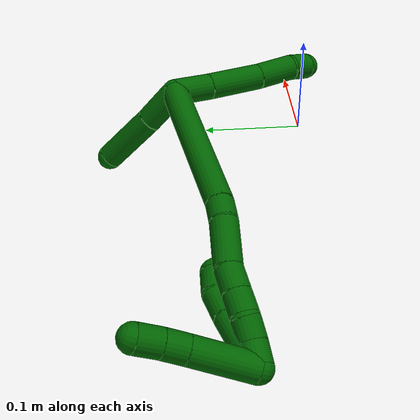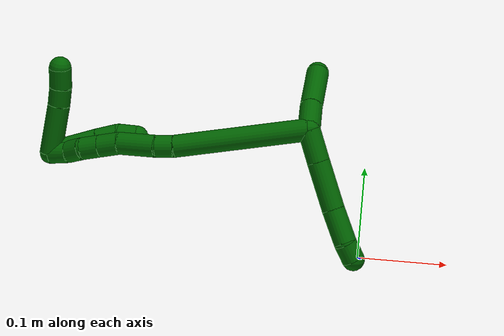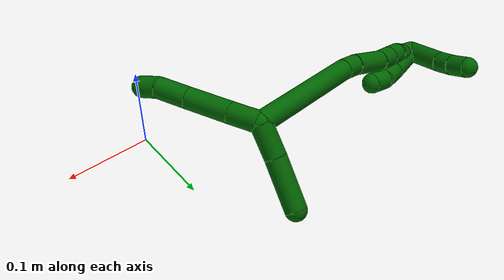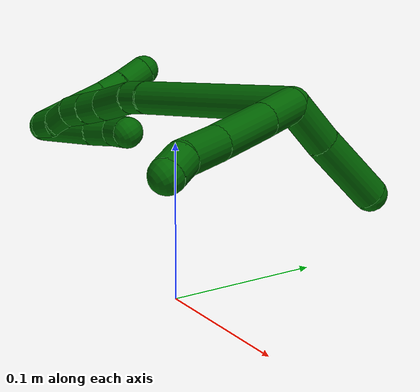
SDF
<sdf version="1.7">
 <world name="default">
  <model name="photoneo_s_sensor">
   <static>1</static>
   <pose>0 0 2 1.57079 1.57079 3.14159</pose>
   <link name="link">
    <inertial><mass>0.1</mass></inertial>
    <sensor name="sensor" type="depth">
     <update_rate>30</update_rate>
     <camera>
      <horizontal_fov>1.22</horizontal_fov>
      <image><width>1920</width><height>1200</height><format>B8G8R8</format></image>
      <clip><near>0.1</near><far>4</far></clip>
      <depth_camera><output>points</output></depth_camera>
     </camera>
     <plugin name="camera_plugin" filename="libgazebo_ros_depth_camera.so">
      <baseline>0.2</baseline>
      <alwaysOn>1</alwaysOn>
      <updateRate>0.0</updateRate>
      <cameraName>camera_ir</cameraName>
      <imageTopicName>/camera/color/image_raw</imageTopicName>
      <cameraInfoTopicName>/camera/color/camera_info</cameraInfoTopicName>
      <depthImageTopicName>/camera/depth/image_raw</depthImageTopicName>
      <depthImageCameraInfoTopicName>/camera/depth/camera_info</depthImageCameraInfoTopicName>
      <pointCloudTopicName>/camera/depth/points</pointCloudTopicName>
      <frameName>fr_optical</frameName>
      <pointCloudCutoff>0.1</pointCloudCutoff>
      <pointCloudCutoffMax>2.0</pointCloudCutoffMax>
      <distortionK1>0</distortionK1>
      <distortionK2>0</distortionK2>
      <distortionK3>0</distortionK3>
      <distortionT1>0</distortionT1>
      <distortionT2>0</distortionT2>
      <CxPrime>0</CxPrime>
      <Cx>0</Cx>
      <Cy>0</Cy>
      <focalLength>0</focalLength>
      <hackBaseline>0</hackBaseline>
     </plugin>
    </sensor>
   </link>
  </model>
  <model name="bin">
   <static>1</static>
   <link name="bottom">
    <collision name="collision-bottom">
     <pose>0 0 -0.01 0 -0 0</pose>
     <geometry><box><size>0.8 0.6 0.02</size></box></geometry>
     <surface>
      <friction><ode><mu>100</mu><mu2>100</mu2></ode></friction>
      <contact><collide_bitmask>65535</collide_bitmask></contact>
     </surface>
    </collision>
   </link>
   <link name="west_wall">
    <collision name="collision-west_wall">
     <pose>-0.41 0 0.1 0 -0 0</pose>
     <geometry><box><size>0.02 0.6 0.2</size></box></geometry>
     <surface>
      <friction><ode><mu>100</mu><mu2>100</mu2></ode></friction>
      <contact><collide_bitmask>65535</collide_bitmask></contact>
     </surface>
    </collision>
   </link>
   <link name="east_wall">
    <collision name="collision-east_wall">
     <pose>0.41 0 0.1 0 -0 0</pose>
     <geometry><box><size>0.02 0.6 0.2</size></box></geometry>
     <surface>
      <friction><ode><mu>100</mu><mu2>100</mu2></ode></friction>
      <contact><collide_bitmask>65535</collide_bitmask></contact>
     </surface>
    </collision>
   </link>
   <link name="south_wall">
    <collision name="collision-south_wall">
     <pose>0 -0.31 0.1 0 -0 0</pose>
     <geometry><box><size>0.8 0.02 0.2</size></box></geometry>
     <surface>
      <friction><ode><mu>100</mu><mu2>100</mu2></ode></friction>
      <contact><collide_bitmask>65535</collide_bitmask></contact>
     </surface>
    </collision>
   </link>
   <link name="north_wall">
    <collision name="collision-north_wall">
     <pose>0 0.31 0.1 0 -0 0</pose>
     <geometry><box><size>0.8 0.02 0.2</size></box></geometry>
     <surface>
      <friction><ode><mu>100</mu><mu2>100</mu2></ode></friction>
      <contact><collide_bitmask>65535</collide_bitmask></contact>
     </surface>
    </collision>
   </link>
  </model>
  <model name="6">
   <static>0</static>
   <link name="6">
    <collision name="collision-cylinder-e_1_2_8">
     <pose>0.008102 -0.00488 -0.015521 2.83697 0.46203 1.98521</pose>
     <geometry><cylinder><radius>0.0125</radius><length>0.036352</length></cylinder></geometry>
     <surface>
      <friction><ode><mu>1.16</mu><mu2>1.16</mu2><slip1>0</slip1><slip2>0</slip2></ode></friction>
      <contact><ode><kp>1e+06</kp><kd>1</kd><max_vel>0</max_vel><min_depth>0.001</min_depth></ode></contact>
     </surface>
    </collision>
    <visual name="visual-cylinder-e_1_2_8">
     <pose>0.008102 -0.00488 -0.015521 2.83697 0.46203 1.98521</pose>
     <geometry><cylinder><radius>0.0125</radius><length>0.036352</length></cylinder></geometry>
     <material><ambient>0 0.392157 0.003922 1</ambient></material>
    </visual>
    <collision name="collision-cylinder-e_2_8_9">
     <pose>0.028754 -0.017737 -0.05378 2.80417 0.480137 1.92575</pose>
     <geometry><cylinder><radius>0.0125</radius><length>0.054337</length></cylinder></geometry>
     <surface>
      <friction><ode><mu>1.16</mu><mu2>1.16</mu2><slip1>0</slip1><slip2>0</slip2></ode></friction>
      <contact><ode><kp>1e+06</kp><kd>1</kd><max_vel>0</max_vel><min_depth>0.001</min_depth></ode></contact>
     </surface>
    </collision>
    <visual name="visual-cylinder-e_2_8_9">
     <pose>0.028754 -0.017737 -0.05378 2.80417 0.480137 1.92575</pose>
     <geometry><cylinder><radius>0.0125</radius><length>0.054337</length></cylinder></geometry>
     <material><ambient>0 0.392157 0.003922 1</ambient></material>
    </visual>
    <collision name="collision-cylinder-e_3_9_10">
     <pose>0.050983 -0.032166 -0.091988 2.74651 0.523737 1.85873</pose>
     <geometry><cylinder><radius>0.0125</radius><length>0.03871</length></cylinder></geometry>
     <surface>
      <friction><ode><mu>1.16</mu><mu2>1.16</mu2><slip1>0</slip1><slip2>0</slip2></ode></friction>
      <contact><ode><kp>1e+06</kp><kd>1</kd><max_vel>0</max_vel><min_depth>0.001</min_depth></ode></contact>
     </surface>
    </collision>
    <visual name="visual-cylinder-e_3_9_10">
     <pose>0.050983 -0.032166 -0.091988 2.74651 0.523737 1.85873</pose>
     <geometry><cylinder><radius>0.0125</radius><length>0.03871</length></cylinder></geometry>
     <material><ambient>0 0.392157 0.003922 1</ambient></material>
    </visual>
    <collision name="collision-cylinder-e_4_10_6">
     <pose>0.066415 -0.039362 -0.115969 3.05426 0.592488 2.85721</pose>
     <geometry><cylinder><radius>0.0125</radius><length>0.020601</length></cylinder></geometry>
     <surface>
      <friction><ode><mu>1.16</mu><mu2>1.16</mu2><slip1>0</slip1><slip2>0</slip2></ode></friction>
      <contact><ode><kp>1e+06</kp><kd>1</kd><max_vel>0</max_vel><min_depth>0.001</min_depth></ode></contact>
     </surface>
    </collision>
    <visual name="visual-cylinder-e_4_10_6">
     <pose>0.066415 -0.039362 -0.115969 3.05426 0.592488 2.85721</pose>
     <geometry><cylinder><radius>0.0125</radius><length>0.020601</length></cylinder></geometry>
     <material><ambient>0 0.392157 0.003922 1</ambient></material>
    </visual>
    <collision name="collision-cylinder-e_1_2_11">
     <pose>-0.001855 0.018913 0.005287 -1.29824 -0.094187 0.071493</pose>
     <geometry><cylinder><radius>0.0125</radius><length>0.039451</length></cylinder></geometry>
     <surface>
      <friction><ode><mu>1.16</mu><mu2>1.16</mu2><slip1>0</slip1><slip2>0</slip2></ode></friction>
      <contact><ode><kp>1e+06</kp><kd>1</kd><max_vel>0</max_vel><min_depth>0.001</min_depth></ode></contact>
     </surface>
    </collision>
    <visual name="visual-cylinder-e_1_2_11">
     <pose>-0.001855 0.018913 0.005287 -1.29824 -0.094187 0.071493</pose>
     <geometry><cylinder><radius>0.0125</radius><length>0.039451</length></cylinder></geometry>
     <material><ambient>0 0.392157 0.003922 1</ambient></material>
    </visual>
    <collision name="collision-cylinder-e_2_11_5">
     <pose>-0.004803 0.066629 0.019833 -1.25974 -0.036108 0.026321</pose>
     <geometry><cylinder><radius>0.0125</radius><length>0.060549</length></cylinder></geometry>
     <surface>
      <friction><ode><mu>1.16</mu><mu2>1.16</mu2><slip1>0</slip1><slip2>0</slip2></ode></friction>
      <contact><ode><kp>1e+06</kp><kd>1</kd><max_vel>0</max_vel><min_depth>0.001</min_depth></ode></contact>
     </surface>
    </collision>
    <visual name="visual-cylinder-e_2_11_5">
     <pose>-0.004803 0.066629 0.019833 -1.25974 -0.036108 0.026321</pose>
     <geometry><cylinder><radius>0.0125</radius><length>0.060549</length></cylinder></geometry>
     <material><ambient>0 0.392157 0.003922 1</ambient></material>
    </visual>
    <collision name="collision-cylinder-e_1_2_12">
     <pose>-0.071245 -0.002796 -0.022785 3.01949 -1.25908 -2.97415</pose>
     <geometry><cylinder><radius>0.0125</radius><length>0.149705</length></cylinder></geometry>
     <surface>
      <friction><ode><mu>1.16</mu><mu2>1.16</mu2><slip1>0</slip1><slip2>0</slip2></ode></friction>
      <contact><ode><kp>1e+06</kp><kd>1</kd><max_vel>0</max_vel><min_depth>0.001</min_depth></ode></contact>
     </surface>
    </collision>
    <visual name="visual-cylinder-e_1_2_12">
     <pose>-0.071245 -0.002796 -0.022785 3.01949 -1.25908 -2.97415</pose>
     <geometry><cylinder><radius>0.0125</radius><length>0.149705</length></cylinder></geometry>
     <material><ambient>0 0.392157 0.003922 1</ambient></material>
    </visual>
    <collision name="collision-cylinder-e_2_12_13">
     <pose>-0.152433 -0.005097 -0.047741 -2.91711 -1.35054 2.86195</pose>
     <geometry><cylinder><radius>0.0125</radius><length>0.020379</length></cylinder></geometry>
     <surface>
      <friction><ode><mu>1.16</mu><mu2>1.16</mu2><slip1>0</slip1><slip2>0</slip2></ode></friction>
      <contact><ode><kp>1e+06</kp><kd>1</kd><max_vel>0</max_vel><min_depth>0.001</min_depth></ode></contact>
     </surface>
    </collision>
    <visual name="visual-cylinder-e_2_12_13">
     <pose>-0.152433 -0.005097 -0.047741 -2.91711 -1.35054 2.86195</pose>
     <geometry><cylinder><radius>0.0125</radius><length>0.020379</length></cylinder></geometry>
     <material><ambient>0 0.392157 0.003922 1</ambient></material>
    </visual>
    <collision name="collision-cylinder-e_3_13_14">
     <pose>-0.183274 0.000151 -0.054161 -2.30044 -1.27469 2.05479</pose>
     <geometry><cylinder><radius>0.0125</radius><length>0.043696</length></cylinder></geometry>
     <surface>
      <friction><ode><mu>1.16</mu><mu2>1.16</mu2><slip1>0</slip1><slip2>0</slip2></ode></friction>
      <contact><ode><kp>1e+06</kp><kd>1</kd><max_vel>0</max_vel><min_depth>0.001</min_depth></ode></contact>
     </surface>
    </collision>
    <visual name="visual-cylinder-e_3_13_14">
     <pose>-0.183274 0.000151 -0.054161 -2.30044 -1.27469 2.05479</pose>
     <geometry><cylinder><radius>0.0125</radius><length>0.043696</length></cylinder></geometry>
     <material><ambient>0 0.392157 0.003922 1</ambient></material>
    </visual>
    <collision name="collision-cylinder-e_4_14_15">
     <pose>-0.214991 0.006215 -0.062747 -2.84784 -1.17434 2.70409</pose>
     <geometry><cylinder><radius>0.0125</radius><length>0.02346</length></cylinder></geometry>
     <surface>
      <friction><ode><mu>1.16</mu><mu2>1.16</mu2><slip1>0</slip1><slip2>0</slip2></ode></friction>
      <contact><ode><kp>1e+06</kp><kd>1</kd><max_vel>0</max_vel><min_depth>0.001</min_depth></ode></contact>
     </surface>
    </collision>
    <visual name="visual-cylinder-e_4_14_15">
     <pose>-0.214991 0.006215 -0.062747 -2.84784 -1.17434 2.70409</pose>
     <geometry><cylinder><radius>0.0125</radius><length>0.02346</length></cylinder></geometry>
     <material><ambient>0 0.392157 0.003922 1</ambient></material>
    </visual>
    <collision name="collision-cylinder-e_5_15_16">
     <pose>-0.235487 0.008694 -0.071057 -2.856 -1.16627 2.7124</pose>
     <geometry><cylinder><radius>0.0125</radius><length>0.021052</length></cylinder></geometry>
     <surface>
      <friction><ode><mu>1.16</mu><mu2>1.16</mu2><slip1>0</slip1><slip2>0</slip2></ode></friction>
      <contact><ode><kp>1e+06</kp><kd>1</kd><max_vel>0</max_vel><min_depth>0.001</min_depth></ode></contact>
     </surface>
    </collision>
    <visual name="visual-cylinder-e_5_15_16">
     <pose>-0.235487 0.008694 -0.071057 -2.856 -1.16627 2.7124</pose>
     <geometry><cylinder><radius>0.0125</radius><length>0.021052</length></cylinder></geometry>
     <material><ambient>0 0.392157 0.003922 1</ambient></material>
    </visual>
    <collision name="collision-cylinder-e_6_16_17">
     <pose>-0.253209 0.013685 -0.080038 -2.48916 -0.906465 1.92742</pose>
     <geometry><cylinder><radius>0.0125</radius><length>0.020436</length></cylinder></geometry>
     <surface>
      <friction><ode><mu>1.16</mu><mu2>1.16</mu2><slip1>0</slip1><slip2>0</slip2></ode></friction>
      <contact><ode><kp>1e+06</kp><kd>1</kd><max_vel>0</max_vel><min_depth>0.001</min_depth></ode></contact>
     </surface>
    </collision>
    <visual name="visual-cylinder-e_6_16_17">
     <pose>-0.253209 0.013685 -0.080038 -2.48916 -0.906465 1.92742</pose>
     <geometry><cylinder><radius>0.0125</radius><length>0.020436</length></cylinder></geometry>
     <material><ambient>0 0.392157 0.003922 1</ambient></material>
    </visual>
    <collision name="collision-cylinder-e_7_17_1">
     <pose>-0.271289 0.01915 -0.088164 -2.65761 -1.23297 2.47123</pose>
     <geometry><cylinder><radius>0.0125</radius><length>0.021274</length></cylinder></geometry>
     <surface>
      <friction><ode><mu>1.16</mu><mu2>1.16</mu2><slip1>0</slip1><slip2>0</slip2></ode></friction>
      <contact><ode><kp>1e+06</kp><kd>1</kd><max_vel>0</max_vel><min_depth>0.001</min_depth></ode></contact>
     </surface>
    </collision>
    <visual name="visual-cylinder-e_7_17_1">
     <pose>-0.271289 0.01915 -0.088164 -2.65761 -1.23297 2.47123</pose>
     <geometry><cylinder><radius>0.0125</radius><length>0.021274</length></cylinder></geometry>
     <material><ambient>0 0.392157 0.003922 1</ambient></material>
    </visual>
    <collision name="collision-cylinder-e_1_1_18">
     <pose>-0.256843 0.024542 -0.080292 -0.32881 1.1278 -0.209066</pose>
     <geometry><cylinder><radius>0.0125</radius><length>0.054195</length></cylinder></geometry>
     <surface>
      <friction><ode><mu>1.16</mu><mu2>1.16</mu2><slip1>0</slip1><slip2>0</slip2></ode></friction>
      <contact><ode><kp>1e+06</kp><kd>1</kd><max_vel>0</max_vel><min_depth>0.001</min_depth></ode></contact>
     </surface>
    </collision>
    <visual name="visual-cylinder-e_1_1_18">
     <pose>-0.256843 0.024542 -0.080292 -0.32881 1.1278 -0.209066</pose>
     <geometry><cylinder><radius>0.0125</radius><length>0.054195</length></cylinder></geometry>
     <material><ambient>0 0.392157 0.003922 1</ambient></material>
    </visual>
    <collision name="collision-cylinder-e_2_18_19">
     <pose>-0.221105 0.029212 -0.064534 -0.190605 1.16378 -0.125609</pose>
     <geometry><cylinder><radius>0.0125</radius><length>0.024514</length></cylinder></geometry>
     <surface>
      <friction><ode><mu>1.16</mu><mu2>1.16</mu2><slip1>0</slip1><slip2>0</slip2></ode></friction>
      <contact><ode><kp>1e+06</kp><kd>1</kd><max_vel>0</max_vel><min_depth>0.001</min_depth></ode></contact>
     </surface>
    </collision>
    <visual name="visual-cylinder-e_2_18_19">
     <pose>-0.221105 0.029212 -0.064534 -0.190605 1.16378 -0.125609</pose>
     <geometry><cylinder><radius>0.0125</radius><length>0.024514</length></cylinder></geometry>
     <material><ambient>0 0.392157 0.003922 1</ambient></material>
    </visual>
    <collision name="collision-cylinder-e_3_19_4">
     <pose>-0.199293 0.029412 -0.058598 0.550486 1.44129 0.48622</pose>
     <geometry><cylinder><radius>0.0125</radius><length>0.021291</length></cylinder></geometry>
     <surface>
      <friction><ode><mu>1.16</mu><mu2>1.16</mu2><slip1>0</slip1><slip2>0</slip2></ode></friction>
      <contact><ode><kp>1e+06</kp><kd>1</kd><max_vel>0</max_vel><min_depth>0.001</min_depth></ode></contact>
     </surface>
    </collision>
    <visual name="visual-cylinder-e_3_19_4">
     <pose>-0.199293 0.029412 -0.058598 0.550486 1.44129 0.48622</pose>
     <geometry><cylinder><radius>0.0125</radius><length>0.021291</length></cylinder></geometry>
     <material><ambient>0 0.392157 0.003922 1</ambient></material>
    </visual>
    <collision name="collision-cylinder-e_1_1_20">
     <pose>-0.280399 0.023405 -0.063013 -0.092196 0.032574 -0.001503</pose>
     <geometry><cylinder><radius>0.0125</radius><length>0.056814</length></cylinder></geometry>
     <surface>
      <friction><ode><mu>1.16</mu><mu2>1.16</mu2><slip1>0</slip1><slip2>0</slip2></ode></friction>
      <contact><ode><kp>1e+06</kp><kd>1</kd><max_vel>0</max_vel><min_depth>0.001</min_depth></ode></contact>
     </surface>
    </collision>
    <visual name="visual-cylinder-e_1_1_20">
     <pose>-0.280399 0.023405 -0.063013 -0.092196 0.032574 -0.001503</pose>
     <geometry><cylinder><radius>0.0125</radius><length>0.056814</length></cylinder></geometry>
     <material><ambient>0 0.392157 0.003922 1</ambient></material>
    </visual>
    <collision name="collision-cylinder-e_2_20_21">
     <pose>-0.279719 0.026489 -0.024517 -0.046003 -0.023929 0.000551</pose>
     <geometry><cylinder><radius>0.0125</radius><length>0.020477</length></cylinder></geometry>
     <surface>
      <friction><ode><mu>1.16</mu><mu2>1.16</mu2><slip1>0</slip1><slip2>0</slip2></ode></friction>
      <contact><ode><kp>1e+06</kp><kd>1</kd><max_vel>0</max_vel><min_depth>0.001</min_depth></ode></contact>
     </surface>
    </collision>
    <visual name="visual-cylinder-e_2_20_21">
     <pose>-0.279719 0.026489 -0.024517 -0.046003 -0.023929 0.000551</pose>
     <geometry><cylinder><radius>0.0125</radius><length>0.020477</length></cylinder></geometry>
     <material><ambient>0 0.392157 0.003922 1</ambient></material>
    </visual>
    <collision name="collision-cylinder-e_3_21_3">
     <pose>-0.281554 0.027043 -0.00305 -0.00739 -0.140533 0.00052</pose>
     <geometry><cylinder><radius>0.0125</radius><length>0.022709</length></cylinder></geometry>
     <surface>
      <friction><ode><mu>1.16</mu><mu2>1.16</mu2><slip1>0</slip1><slip2>0</slip2></ode></friction>
      <contact><ode><kp>1e+06</kp><kd>1</kd><max_vel>0</max_vel><min_depth>0.001</min_depth></ode></contact>
     </surface>
    </collision>
    <visual name="visual-cylinder-e_3_21_3">
     <pose>-0.281554 0.027043 -0.00305 -0.00739 -0.140533 0.00052</pose>
     <geometry><cylinder><radius>0.0125</radius><length>0.022709</length></cylinder></geometry>
     <material><ambient>0 0.392157 0.003922 1</ambient></material>
    </visual>
    <collision name="collision-sphere-3">
     <pose>-0.283145 0.027126 0.008192 0 -0 0</pose>
     <geometry><sphere><radius>0.0125</radius></sphere></geometry>
     <surface>
      <friction><ode><mu>1.16</mu><mu2>1.16</mu2><slip1>0</slip1><slip2>0</slip2></ode></friction>
      <contact><ode><kp>1e+06</kp><kd>1</kd><max_vel>0</max_vel><min_depth>0.001</min_depth></ode></contact>
     </surface>
    </collision>
    <visual name="visual-sphere-3">
     <pose>-0.283145 0.027126 0.008192 0 -0 0</pose>
     <geometry><sphere><radius>0.0125</radius></sphere></geometry>
     <material><ambient>0 0.392157 0.003922 1</ambient></material>
    </visual>
    <collision name="collision-sphere-21">
     <pose>-0.279964 0.02696 -0.014292 0 -0 0</pose>
     <geometry><sphere><radius>0.0125</radius></sphere></geometry>
     <surface>
      <friction><ode><mu>1.16</mu><mu2>1.16</mu2><slip1>0</slip1><slip2>0</slip2></ode></friction>
      <contact><ode><kp>1e+06</kp><kd>1</kd><max_vel>0</max_vel><min_depth>0.001</min_depth></ode></contact>
     </surface>
    </collision>
    <visual name="visual-sphere-21">
     <pose>-0.279964 0.02696 -0.014292 0 -0 0</pose>
     <geometry><sphere><radius>0.0125</radius></sphere></geometry>
     <material><ambient>0 0.392157 0.003922 1</ambient></material>
    </visual>
    <collision name="collision-sphere-20">
     <pose>-0.279474 0.026019 -0.034742 0 -0 0</pose>
     <geometry><sphere><radius>0.0125</radius></sphere></geometry>
     <surface>
      <friction><ode><mu>1.16</mu><mu2>1.16</mu2><slip1>0</slip1><slip2>0</slip2></ode></friction>
      <contact><ode><kp>1e+06</kp><kd>1</kd><max_vel>0</max_vel><min_depth>0.001</min_depth></ode></contact>
     </surface>
    </collision>
    <visual name="visual-sphere-20">
     <pose>-0.279474 0.026019 -0.034742 0 -0 0</pose>
     <geometry><sphere><radius>0.0125</radius></sphere></geometry>
     <material><ambient>0 0.392157 0.003922 1</ambient></material>
    </visual>
    <collision name="collision-sphere-4">
     <pose>-0.188737 0.028692 -0.057426 0 -0 0</pose>
     <geometry><sphere><radius>0.0125</radius></sphere></geometry>
     <surface>
      <friction><ode><mu>1.16</mu><mu2>1.16</mu2><slip1>0</slip1><slip2>0</slip2></ode></friction>
      <contact><ode><kp>1e+06</kp><kd>1</kd><max_vel>0</max_vel><min_depth>0.001</min_depth></ode></contact>
     </surface>
    </collision>
    <visual name="visual-sphere-4">
     <pose>-0.188737 0.028692 -0.057426 0 -0 0</pose>
     <geometry><sphere><radius>0.0125</radius></sphere></geometry>
     <material><ambient>0 0.392157 0.003922 1</ambient></material>
    </visual>
    <collision name="collision-sphere-11">
     <pose>-0.00371 0.037826 0.010573 0 -0 0</pose>
     <geometry><sphere><radius>0.0125</radius></sphere></geometry>
     <surface>
      <friction><ode><mu>1.16</mu><mu2>1.16</mu2><slip1>0</slip1><slip2>0</slip2></ode></friction>
      <contact><ode><kp>1e+06</kp><kd>1</kd><max_vel>0</max_vel><min_depth>0.001</min_depth></ode></contact>
     </surface>
    </collision>
    <visual name="visual-sphere-11">
     <pose>-0.00371 0.037826 0.010573 0 -0 0</pose>
     <geometry><sphere><radius>0.0125</radius></sphere></geometry>
     <material><ambient>0 0.392157 0.003922 1</ambient></material>
    </visual>
    <collision name="collision-sphere-6">
     <pose>0.072167 -0.040107 -0.124481 0 -0 0</pose>
     <geometry><sphere><radius>0.0125</radius></sphere></geometry>
     <surface>
      <friction><ode><mu>1.16</mu><mu2>1.16</mu2><slip1>0</slip1><slip2>0</slip2></ode></friction>
      <contact><ode><kp>1e+06</kp><kd>1</kd><max_vel>0</max_vel><min_depth>0.001</min_depth></ode></contact>
     </surface>
    </collision>
    <visual name="visual-sphere-6">
     <pose>0.072167 -0.040107 -0.124481 0 -0 0</pose>
     <geometry><sphere><radius>0.0125</radius></sphere></geometry>
     <material><ambient>0 0.392157 0.003922 1</ambient></material>
    </visual>
    <collision name="collision-sphere-10">
     <pose>0.060663 -0.038616 -0.107457 0 -0 0</pose>
     <geometry><sphere><radius>0.0125</radius></sphere></geometry>
     <surface>
      <friction><ode><mu>1.16</mu><mu2>1.16</mu2><slip1>0</slip1><slip2>0</slip2></ode></friction>
      <contact><ode><kp>1e+06</kp><kd>1</kd><max_vel>0</max_vel><min_depth>0.001</min_depth></ode></contact>
     </surface>
    </collision>
    <visual name="visual-sphere-10">
     <pose>0.060663 -0.038616 -0.107457 0 -0 0</pose>
     <geometry><sphere><radius>0.0125</radius></sphere></geometry>
     <material><ambient>0 0.392157 0.003922 1</ambient></material>
    </visual>
    <collision name="collision-sphere-9">
     <pose>0.041303 -0.025715 -0.076518 0 -0 0</pose>
     <geometry><sphere><radius>0.0125</radius></sphere></geometry>
     <surface>
      <friction><ode><mu>1.16</mu><mu2>1.16</mu2><slip1>0</slip1><slip2>0</slip2></ode></friction>
      <contact><ode><kp>1e+06</kp><kd>1</kd><max_vel>0</max_vel><min_depth>0.001</min_depth></ode></contact>
     </surface>
    </collision>
    <visual name="visual-sphere-9">
     <pose>0.041303 -0.025715 -0.076518 0 -0 0</pose>
     <geometry><sphere><radius>0.0125</radius></sphere></geometry>
     <material><ambient>0 0.392157 0.003922 1</ambient></material>
    </visual>
    <collision name="collision-sphere-2">
     <geometry><sphere><radius>0.0125</radius></sphere></geometry>
     <surface>
      <friction><ode><mu>1.16</mu><mu2>1.16</mu2><slip1>0</slip1><slip2>0</slip2></ode></friction>
      <contact><ode><kp>1e+06</kp><kd>1</kd><max_vel>0</max_vel><min_depth>0.001</min_depth></ode></contact>
     </surface>
    </collision>
    <visual name="visual-sphere-2">
     <geometry><sphere><radius>0.0125</radius></sphere></geometry>
     <material><ambient>0 0.392157 0.003922 1</ambient></material>
    </visual>
    <collision name="collision-sphere-19">
     <pose>-0.20985 0.030131 -0.05977 0 -0 0</pose>
     <geometry><sphere><radius>0.0125</radius></sphere></geometry>
     <surface>
      <friction><ode><mu>1.16</mu><mu2>1.16</mu2><slip1>0</slip1><slip2>0</slip2></ode></friction>
      <contact><ode><kp>1e+06</kp><kd>1</kd><max_vel>0</max_vel><min_depth>0.001</min_depth></ode></contact>
     </surface>
    </collision>
    <visual name="visual-sphere-19">
     <pose>-0.20985 0.030131 -0.05977 0 -0 0</pose>
     <geometry><sphere><radius>0.0125</radius></sphere></geometry>
     <material><ambient>0 0.392157 0.003922 1</ambient></material>
    </visual>
    <collision name="collision-sphere-8">
     <pose>0.016205 -0.00976 -0.031042 0 -0 0</pose>
     <geometry><sphere><radius>0.0125</radius></sphere></geometry>
     <surface>
      <friction><ode><mu>1.16</mu><mu2>1.16</mu2><slip1>0</slip1><slip2>0</slip2></ode></friction>
      <contact><ode><kp>1e+06</kp><kd>1</kd><max_vel>0</max_vel><min_depth>0.001</min_depth></ode></contact>
     </surface>
    </collision>
    <visual name="visual-sphere-8">
     <pose>0.016205 -0.00976 -0.031042 0 -0 0</pose>
     <geometry><sphere><radius>0.0125</radius></sphere></geometry>
     <material><ambient>0 0.392157 0.003922 1</ambient></material>
    </visual>
    <collision name="collision-sphere-5">
     <pose>-0.005896 0.095432 0.029093 0 -0 0</pose>
     <geometry><sphere><radius>0.0125</radius></sphere></geometry>
     <surface>
      <friction><ode><mu>1.16</mu><mu2>1.16</mu2><slip1>0</slip1><slip2>0</slip2></ode></friction>
      <contact><ode><kp>1e+06</kp><kd>1</kd><max_vel>0</max_vel><min_depth>0.001</min_depth></ode></contact>
     </surface>
    </collision>
    <visual name="visual-sphere-5">
     <pose>-0.005896 0.095432 0.029093 0 -0 0</pose>
     <geometry><sphere><radius>0.0125</radius></sphere></geometry>
     <material><ambient>0 0.392157 0.003922 1</ambient></material>
    </visual>
    <collision name="collision-sphere-12">
     <pose>-0.14249 -0.005592 -0.045571 0 -0 0</pose>
     <geometry><sphere><radius>0.0125</radius></sphere></geometry>
     <surface>
      <friction><ode><mu>1.16</mu><mu2>1.16</mu2><slip1>0</slip1><slip2>0</slip2></ode></friction>
      <contact><ode><kp>1e+06</kp><kd>1</kd><max_vel>0</max_vel><min_depth>0.001</min_depth></ode></contact>
     </surface>
    </collision>
    <visual name="visual-sphere-12">
     <pose>-0.14249 -0.005592 -0.045571 0 -0 0</pose>
     <geometry><sphere><radius>0.0125</radius></sphere></geometry>
     <material><ambient>0 0.392157 0.003922 1</ambient></material>
    </visual>
    <collision name="collision-sphere-13">
     <pose>-0.162377 -0.004601 -0.049912 0 -0 0</pose>
     <geometry><sphere><radius>0.0125</radius></sphere></geometry>
     <surface>
      <friction><ode><mu>1.16</mu><mu2>1.16</mu2><slip1>0</slip1><slip2>0</slip2></ode></friction>
      <contact><ode><kp>1e+06</kp><kd>1</kd><max_vel>0</max_vel><min_depth>0.001</min_depth></ode></contact>
     </surface>
    </collision>
    <visual name="visual-sphere-13">
     <pose>-0.162377 -0.004601 -0.049912 0 -0 0</pose>
     <geometry><sphere><radius>0.0125</radius></sphere></geometry>
     <material><ambient>0 0.392157 0.003922 1</ambient></material>
    </visual>
    <collision name="collision-sphere-14">
     <pose>-0.204171 0.004903 -0.058411 0 -0 0</pose>
     <geometry><sphere><radius>0.0125</radius></sphere></geometry>
     <surface>
      <friction><ode><mu>1.16</mu><mu2>1.16</mu2><slip1>0</slip1><slip2>0</slip2></ode></friction>
      <contact><ode><kp>1e+06</kp><kd>1</kd><max_vel>0</max_vel><min_depth>0.001</min_depth></ode></contact>
     </surface>
    </collision>
    <visual name="visual-sphere-14">
     <pose>-0.204171 0.004903 -0.058411 0 -0 0</pose>
     <geometry><sphere><radius>0.0125</radius></sphere></geometry>
     <material><ambient>0 0.392157 0.003922 1</ambient></material>
    </visual>
    <collision name="collision-sphere-15">
     <pose>-0.225811 0.007526 -0.067082 0 -0 0</pose>
     <geometry><sphere><radius>0.0125</radius></sphere></geometry>
     <surface>
      <friction><ode><mu>1.16</mu><mu2>1.16</mu2><slip1>0</slip1><slip2>0</slip2></ode></friction>
      <contact><ode><kp>1e+06</kp><kd>1</kd><max_vel>0</max_vel><min_depth>0.001</min_depth></ode></contact>
     </surface>
    </collision>
    <visual name="visual-sphere-15">
     <pose>-0.225811 0.007526 -0.067082 0 -0 0</pose>
     <geometry><sphere><radius>0.0125</radius></sphere></geometry>
     <material><ambient>0 0.392157 0.003922 1</ambient></material>
    </visual>
    <collision name="collision-sphere-16">
     <pose>-0.245164 0.009861 -0.075032 0 -0 0</pose>
     <geometry><sphere><radius>0.0125</radius></sphere></geometry>
     <surface>
      <friction><ode><mu>1.16</mu><mu2>1.16</mu2><slip1>0</slip1><slip2>0</slip2></ode></friction>
      <contact><ode><kp>1e+06</kp><kd>1</kd><max_vel>0</max_vel><min_depth>0.001</min_depth></ode></contact>
     </surface>
    </collision>
    <visual name="visual-sphere-16">
     <pose>-0.245164 0.009861 -0.075032 0 -0 0</pose>
     <geometry><sphere><radius>0.0125</radius></sphere></geometry>
     <material><ambient>0 0.392157 0.003922 1</ambient></material>
    </visual>
    <collision name="collision-sphere-17">
     <pose>-0.261253 0.01751 -0.085044 0 -0 0</pose>
     <geometry><sphere><radius>0.0125</radius></sphere></geometry>
     <surface>
      <friction><ode><mu>1.16</mu><mu2>1.16</mu2><slip1>0</slip1><slip2>0</slip2></ode></friction>
      <contact><ode><kp>1e+06</kp><kd>1</kd><max_vel>0</max_vel><min_depth>0.001</min_depth></ode></contact>
     </surface>
    </collision>
    <visual name="visual-sphere-17">
     <pose>-0.261253 0.01751 -0.085044 0 -0 0</pose>
     <geometry><sphere><radius>0.0125</radius></sphere></geometry>
     <material><ambient>0 0.392157 0.003922 1</ambient></material>
    </visual>
    <collision name="collision-sphere-1">
     <pose>-0.281324 0.020791 -0.091285 0 -0 0</pose>
     <geometry><sphere><radius>0.0125</radius></sphere></geometry>
     <surface>
      <friction><ode><mu>1.16</mu><mu2>1.16</mu2><slip1>0</slip1><slip2>0</slip2></ode></friction>
      <contact><ode><kp>1e+06</kp><kd>1</kd><max_vel>0</max_vel><min_depth>0.001</min_depth></ode></contact>
     </surface>
    </collision>
    <visual name="visual-sphere-1">
     <pose>-0.281324 0.020791 -0.091285 0 -0 0</pose>
     <geometry><sphere><radius>0.0125</radius></sphere></geometry>
     <material><ambient>0 0.392157 0.003922 1</ambient></material>
    </visual>
    <collision name="collision-sphere-18">
     <pose>-0.232361 0.028292 -0.069299 0 -0 0</pose>
     <geometry><sphere><radius>0.0125</radius></sphere></geometry>
     <surface>
      <friction><ode><mu>1.16</mu><mu2>1.16</mu2><slip1>0</slip1><slip2>0</slip2></ode></friction>
      <contact><ode><kp>1e+06</kp><kd>1</kd><max_vel>0</max_vel><min_depth>0.001</min_depth></ode></contact>
     </surface>
    </collision>
    <visual name="visual-sphere-18">
     <pose>-0.232361 0.028292 -0.069299 0 -0 0</pose>
     <geometry><sphere><radius>0.0125</radius></sphere></geometry>
     <material><ambient>0 0.392157 0.003922 1</ambient></material>
    </visual>
    <inertial>
     <pose>-0.11937 0.009656 -0.043452 0 -0 0</pose>
     <mass>0.75</mass>
     <inertia>
      <ixx>-4.1e-05</ixx>
      <ixy>0</ixy>
      <ixz>0</ixz>
      <iyy>0.000382</iyy>
      <iyz>0</iyz>
      <izz>0.000239</izz>
     </inertia>
    </inertial>
   </link>
   <pose>-0.067577 0.134998 0.088899 -1.13823 -0.068666 -0.097112</pose>
  </model>
 </world>
</sdf>
